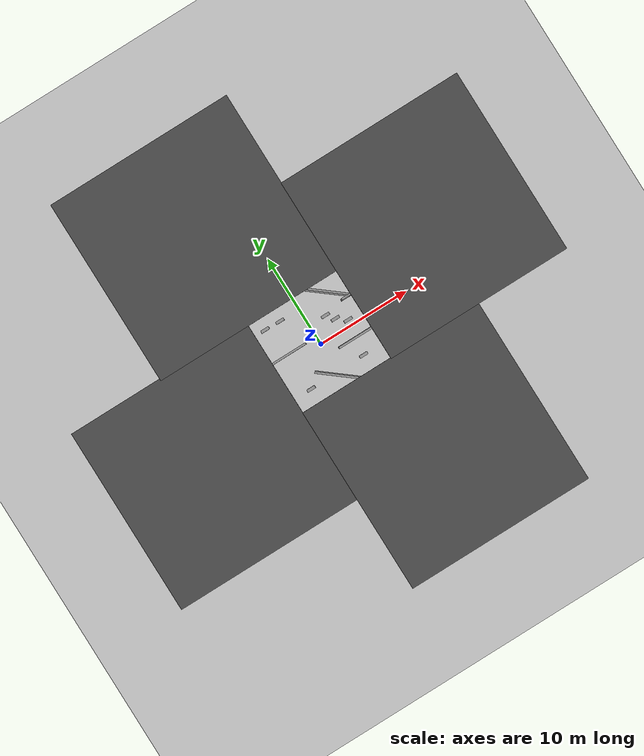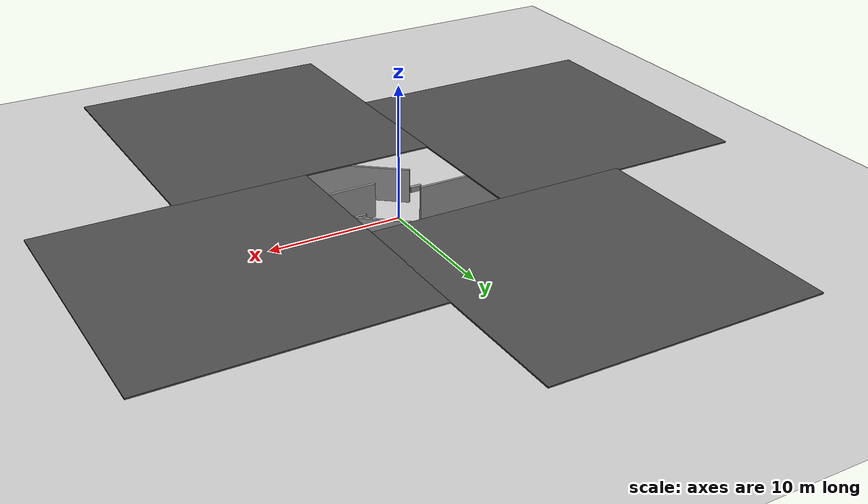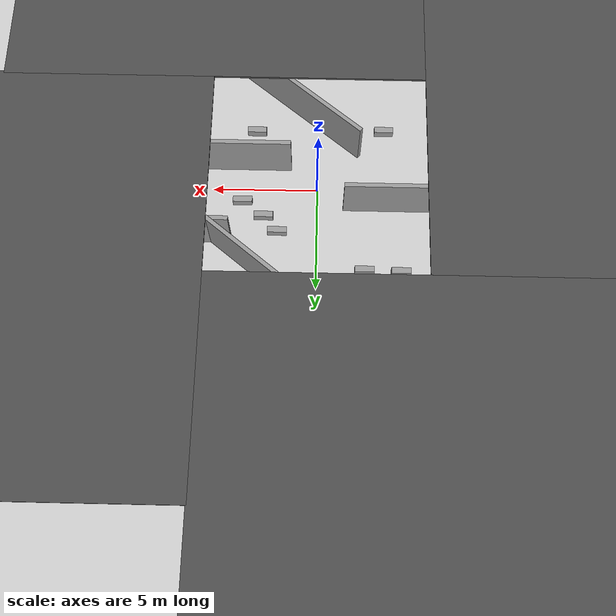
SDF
<sdf version="1.7">
 <world name="default">
  <light name="sun" type="directional">
   <pose>0 0 10 0 -0 0</pose>
   <diffuse>0.8 0.8 0.8 1</diffuse>
   <specular>0.1 0.1 0.1 1</specular>
   <attenuation>
    <range>1000</range>
    <constant>0.9</constant>
    <linear>0.01</linear>
    <quadratic>0.001</quadratic>
   </attenuation>
   <direction>-0.5 0.5 -1</direction>
   <spot><inner_angle>0</inner_angle><outer_angle>0</outer_angle><falloff>0</falloff></spot>
  </light>
  <model name="ground_plane">
   <static>1</static>
   <link name="link">
    <collision name="collision">
     <geometry><plane><normal>0 0 1</normal><size>100 100</size></plane></geometry>
     <surface><friction><ode><mu>100</mu><mu2>50</mu2></ode></friction></surface>
    </collision>
    <visual name="visual">
     <cast_shadows>0</cast_shadows>
     <geometry><plane><normal>0 0 1</normal><size>100 100</size></plane></geometry>
     <material>
      <script><uri>file://media/materials/scripts/gazebo.material</uri><name>Gazebo/Grey</name></script>
     </material>
    </visual>
   </link>
  </model>
  <gravity>0 0 -9.8</gravity>
  <magnetic_field>6e-06 2.3e-05 -4.2e-05</magnetic_field>
  <atmosphere type="adiabatic"/>
  <physics name="default_physics" default="0" type="ode">
   <max_step_size>0.001</max_step_size>
   <real_time_factor>1</real_time_factor>
   <real_time_update_rate>1000</real_time_update_rate>
  </physics>
  <scene><ambient>0.4 0.4 0.4 1</ambient><background>0.7 0.7 0.7 1</background><shadows>1</shadows></scene>
  <spherical_coordinates>
   <surface_model>EARTH_WGS84</surface_model>
   <latitude_deg>0</latitude_deg>
   <longitude_deg>0</longitude_deg>
   <elevation>0</elevation>
   <heading_deg>0</heading_deg>
  </spherical_coordinates>
  <model name="grey_wall">
   <static>1</static>
   <link name="link">
    <pose>0 0 1.4 0 -0 0</pose>
    <collision name="collision"><geometry><box><size>7.5 0.2 2.8</size></box></geometry></collision>
    <visual name="visual">
     <cast_shadows>0</cast_shadows>
     <geometry><box><size>7.5 0.2 2.8</size></box></geometry>
     <material>
      <script>
       <uri>model://grey_wall/materials/scripts</uri>
       <uri>model://grey_wall/materials/textures</uri>
       <name>vrc/grey_wall</name>
      </script>
     </material>
    </visual>
   </link>
   <pose>-4.97998 0.878598 -0.28938 0 -0 0</pose>
  </model>
  <model name="Box_36x15W">
   <link name="Wall">
    <pose>0 0 0.1985 0 -0 0</pose>
    <inertial>
     <mass>5</mass>
     <inertia><ixx>0.1022</ixx><iyy>0.4107</iyy><izz>0.3815</izz><ixy>0</ixy><ixz>0</ixz><iyz>0</iyz></inertia>
    </inertial>
    <collision name="Wall_Collision"><geometry><box><size>0.91 0.296 0.397</size></box></geometry></collision>
    <visual name="Wall_Visual">
     <geometry><box><size>0.91 0.296 0.397</size></box></geometry>
     <material>
      <script><uri>file://media/materials/scripts/gazebo.material</uri><name>Gazebo/Grey</name></script>
      <ambient>1 1 1 1</ambient>
     </material>
    </visual>
   </link>
   <static>1</static>
   <pose>-3.95894 4.15991 0 0 -0 0</pose>
  </model>
  <model name="Box_36x15W_clone">
   <link name="Wall">
    <pose>0 0 0.1985 0 -0 0</pose>
    <inertial>
     <mass>5</mass>
     <inertia><ixx>0.1022</ixx><iyy>0.4107</iyy><izz>0.3815</izz><ixy>0</ixy><ixz>0</ixz><iyz>0</iyz></inertia>
    </inertial>
    <collision name="Wall_Collision"><geometry><box><size>0.91 0.296 0.397</size></box></geometry></collision>
    <visual name="Wall_Visual">
     <geometry><box><size>0.91 0.296 0.397</size></box></geometry>
     <material>
      <script><uri>file://media/materials/scripts/gazebo.material</uri><name>Gazebo/Grey</name></script>
      <ambient>1 1 1 1</ambient>
     </material>
    </visual>
   </link>
   <static>1</static>
   <pose>-2.25428 4.11742 0 0 -0 0</pose>
  </model>
  <model name="grey_wall_clone">
   <static>1</static>
   <link name="link">
    <pose>0 0 1.4 0 -0 0</pose>
    <collision name="collision"><geometry><box><size>7.5 0.2 2.8</size></box></geometry></collision>
    <visual name="visual">
     <cast_shadows>0</cast_shadows>
     <geometry><box><size>7.5 0.2 2.8</size></box></geometry>
     <material>
      <script>
       <uri>model://grey_wall/materials/scripts</uri>
       <uri>model://grey_wall/materials/textures</uri>
       <name>vrc/grey_wall</name>
      </script>
     </material>
    </visual>
   </link>
   <pose>5.01536 -1.22297 -0.28938 0 -0 0</pose>
  </model>
  <model name="grey_wall_clone_0">
   <static>1</static>
   <link name="link">
    <pose>0 0 1.4 0 -0 0</pose>
    <collision name="collision"><geometry><box><size>7.5 0.2 2.8</size></box></geometry></collision>
    <visual name="visual">
     <cast_shadows>0</cast_shadows>
     <geometry><box><size>7.5 0.2 2.8</size></box></geometry>
     <material>
      <script>
       <uri>model://grey_wall/materials/scripts</uri>
       <uri>model://grey_wall/materials/textures</uri>
       <name>vrc/grey_wall</name>
      </script>
     </material>
    </visual>
   </link>
   <pose>7.74049 2.64097 -0.28938 0 -0 0</pose>
  </model>
  <model name="grey_wall_clone_1">
   <static>1</static>
   <link name="link">
    <pose>0 0 1.4 0 -0 0</pose>
    <collision name="collision"><geometry><box><size>7.5 0.2 2.8</size></box></geometry></collision>
    <visual name="visual">
     <cast_shadows>0</cast_shadows>
     <geometry><box><size>7.5 0.2 2.8</size></box></geometry>
     <material>
      <script>
       <uri>model://grey_wall/materials/scripts</uri>
       <uri>model://grey_wall/materials/textures</uri>
       <name>vrc/grey_wall</name>
      </script>
     </material>
    </visual>
   </link>
   <pose>0.93131 -4.31072 -0.28938 0 0 -0.679181</pose>
  </model>
  <model name="grey_wall_clone_1_clone">
   <static>1</static>
   <link name="link">
    <pose>0 0 1.4 0 -0 0</pose>
    <collision name="collision"><geometry><box><size>7.5 0.2 2.8</size></box></geometry></collision>
    <visual name="visual">
     <cast_shadows>0</cast_shadows>
     <geometry><box><size>7.5 0.2 2.8</size></box></geometry>
     <material>
      <script>
       <uri>model://grey_wall/materials/scripts</uri>
       <uri>model://grey_wall/materials/textures</uri>
       <name>vrc/grey_wall</name>
      </script>
     </material>
    </visual>
   </link>
   <pose>2.09069 4.94368 -0.28938 0 0 -0.679181</pose>
  </model>
  <model name="Box_36x15W_clone_clone">
   <link name="Wall">
    <pose>0 0 0.1985 0 -0 0</pose>
    <inertial>
     <mass>5</mass>
     <inertia><ixx>0.1022</ixx><iyy>0.4107</iyy><izz>0.3815</izz><ixy>0</ixy><ixz>0</ixz><iyz>0</iyz></inertia>
    </inertial>
    <collision name="Wall_Collision"><geometry><box><size>0.91 0.296 0.397</size></box></geometry></collision>
    <visual name="Wall_Visual">
     <geometry><box><size>0.91 0.296 0.397</size></box></geometry>
     <material>
      <script><uri>file://media/materials/scripts/gazebo.material</uri><name>Gazebo/Grey</name></script>
      <ambient>1 1 1 1</ambient>
     </material>
    </visual>
   </link>
   <static>1</static>
   <pose>0.298599 5.97474 0 0 -0 0</pose>
  </model>
  <model name="Box_36x15W_clone_clone_0">
   <link name="Wall">
    <pose>0 0 0.1985 0 -0 0</pose>
    <inertial>
     <mass>5</mass>
     <inertia><ixx>0.1022</ixx><iyy>0.4107</iyy><izz>0.3815</izz><ixy>0</ixy><ixz>0</ixz><iyz>0</iyz></inertia>
    </inertial>
    <collision name="Wall_Collision"><geometry><box><size>0.91 0.296 0.397</size></box></geometry></collision>
    <visual name="Wall_Visual">
     <geometry><box><size>0.91 0.296 0.397</size></box></geometry>
     <material>
      <script><uri>file://media/materials/scripts/gazebo.material</uri><name>Gazebo/Grey</name></script>
      <ambient>1 1 1 1</ambient>
     </material>
    </visual>
   </link>
   <static>1</static>
   <pose>-0.508083 5.97917 0 0 -0 0</pose>
  </model>
  <model name="Box_36x15W_clone_clone_1">
   <link name="Wall">
    <pose>0 0 0.1985 0 -0 0</pose>
    <inertial>
     <mass>5</mass>
     <inertia><ixx>0.1022</ixx><iyy>0.4107</iyy><izz>0.3815</izz><ixy>0</ixy><ixz>0</ixz><iyz>0</iyz></inertia>
    </inertial>
    <collision name="Wall_Collision"><geometry><box><size>0.91 0.296 0.397</size></box></geometry></collision>
    <visual name="Wall_Visual">
     <geometry><box><size>0.91 0.296 0.397</size></box></geometry>
     <material>
      <script><uri>file://media/materials/scripts/gazebo.material</uri><name>Gazebo/Grey</name></script>
      <ambient>1 1 1 1</ambient>
     </material>
    </visual>
   </link>
   <static>1</static>
   <pose>3.55747 0.640704 0 0 -0 0</pose>
  </model>
  <model name="Box_36x15W_clone_clone_2">
   <link name="Wall">
    <pose>0 0 0.1985 0 -0 0</pose>
    <inertial>
     <mass>5</mass>
     <inertia><ixx>0.1022</ixx><iyy>0.4107</iyy><izz>0.3815</izz><ixy>0</ixy><ixz>0</ixz><iyz>0</iyz></inertia>
    </inertial>
    <collision name="Wall_Collision"><geometry><box><size>0.91 0.296 0.397</size></box></geometry></collision>
    <visual name="Wall_Visual">
     <geometry><box><size>0.91 0.296 0.397</size></box></geometry>
     <material>
      <script><uri>file://media/materials/scripts/gazebo.material</uri><name>Gazebo/Grey</name></script>
      <ambient>1 1 1 1</ambient>
     </material>
    </visual>
   </link>
   <static>1</static>
   <pose>2.53878 1.41416 0 0 -0 0</pose>
  </model>
  <model name="Box_36x15W_clone_clone_3">
   <link name="Wall">
    <pose>0 0 0.1985 0 -0 0</pose>
    <inertial>
     <mass>5</mass>
     <inertia><ixx>0.1022</ixx><iyy>0.4107</iyy><izz>0.3815</izz><ixy>0</ixy><ixz>0</ixz><iyz>0</iyz></inertia>
    </inertial>
    <collision name="Wall_Collision"><geometry><box><size>0.91 0.296 0.397</size></box></geometry></collision>
    <visual name="Wall_Visual">
     <geometry><box><size>0.91 0.296 0.397</size></box></geometry>
     <material>
      <script><uri>file://media/materials/scripts/gazebo.material</uri><name>Gazebo/Grey</name></script>
      <ambient>1 1 1 1</ambient>
     </material>
    </visual>
   </link>
   <static>1</static>
   <pose>1.86994 2.20102 0 0 -0 0</pose>
  </model>
  <model name="Box_36x15W_clone_clone_4">
   <link name="Wall">
    <pose>0 0 0.1985 0 -0 0</pose>
    <inertial>
     <mass>5</mass>
     <inertia><ixx>0.1022</ixx><iyy>0.4107</iyy><izz>0.3815</izz><ixy>0</ixy><ixz>0</ixz><iyz>0</iyz></inertia>
    </inertial>
    <collision name="Wall_Collision"><geometry><box><size>0.91 0.296 0.397</size></box></geometry></collision>
    <visual name="Wall_Visual">
     <geometry><box><size>0.91 0.296 0.397</size></box></geometry>
     <material>
      <script><uri>file://media/materials/scripts/gazebo.material</uri><name>Gazebo/Grey</name></script>
      <ambient>1 1 1 1</ambient>
     </material>
    </visual>
   </link>
   <static>1</static>
   <pose>2.9982 -3.13348 0 0 -0 0</pose>
  </model>
  <model name="Box_36x15W_clone_clone_5">
   <link name="Wall">
    <pose>0 0 0.1985 0 -0 0</pose>
    <inertial>
     <mass>5</mass>
     <inertia><ixx>0.1022</ixx><iyy>0.4107</iyy><izz>0.3815</izz><ixy>0</ixy><ixz>0</ixz><iyz>0</iyz></inertia>
    </inertial>
    <collision name="Wall_Collision"><geometry><box><size>0.91 0.296 0.397</size></box></geometry></collision>
    <visual name="Wall_Visual">
     <geometry><box><size>0.91 0.296 0.397</size></box></geometry>
     <material>
      <script><uri>file://media/materials/scripts/gazebo.material</uri><name>Gazebo/Grey</name></script>
      <ambient>1 1 1 1</ambient>
     </material>
    </visual>
   </link>
   <static>1</static>
   <pose>-3.18882 -3.22971 0 0 -0 0</pose>
  </model>
  <model name="asphalt_plane">
   <static>1</static>
   <link name="link">
    <collision name="collision"><geometry><box><size>20 20 0.1</size></box></geometry></collision>
    <visual name="visual">
     <cast_shadows>0</cast_shadows>
     <geometry><box><size>20 20 0.1</size></box></geometry>
     <material>
      <script>
       <uri>model://asphalt_plane/materials/scripts</uri>
       <uri>model://asphalt_plane/materials/textures</uri>
       <name>vrc/asphalt</name>
      </script>
     </material>
    </visual>
   </link>
   <pose>14.9706 5.25383 2.54868 0 -0 0</pose>
  </model>
  <model name="asphalt_plane_clone_1">
   <static>1</static>
   <link name="link">
    <collision name="collision"><geometry><box><size>20 20 0.1</size></box></geometry></collision>
    <visual name="visual">
     <cast_shadows>0</cast_shadows>
     <geometry><box><size>20 20 0.1</size></box></geometry>
     <material>
      <script>
       <uri>model://asphalt_plane/materials/scripts</uri>
       <uri>model://asphalt_plane/materials/textures</uri>
       <name>vrc/asphalt</name>
      </script>
     </material>
    </visual>
   </link>
   <pose>4.96079 -14.6462 2.54868 0 -0 0</pose>
  </model>
  <model name="asphalt_plane_clone_1_clone">
   <static>1</static>
   <link name="link">
    <collision name="collision"><geometry><box><size>20 20 0.1</size></box></geometry></collision>
    <visual name="visual">
     <cast_shadows>0</cast_shadows>
     <geometry><box><size>20 20 0.1</size></box></geometry>
     <material>
      <script>
       <uri>model://asphalt_plane/materials/scripts</uri>
       <uri>model://asphalt_plane/materials/textures</uri>
       <name>vrc/asphalt</name>
      </script>
     </material>
    </visual>
   </link>
   <pose>-4.97698 15.2321 2.54868 0 -0 0</pose>
  </model>
  <model name="asphalt_plane_clone_1_clone_clone">
   <static>1</static>
   <link name="link">
    <collision name="collision"><geometry><box><size>20 20 0.1</size></box></geometry></collision>
    <visual name="visual">
     <cast_shadows>0</cast_shadows>
     <geometry><box><size>20 20 0.1</size></box></geometry>
     <material>
      <script>
       <uri>model://asphalt_plane/materials/scripts</uri>
       <uri>model://asphalt_plane/materials/textures</uri>
       <name>vrc/asphalt</name>
      </script>
     </material>
    </visual>
   </link>
   <pose>-15.0101 -4.53458 2.54868 0 -0 0</pose>
  </model>
 </world>
</sdf>
